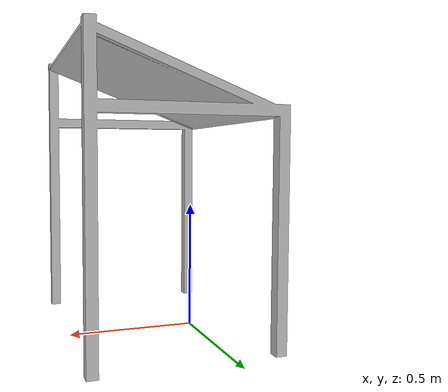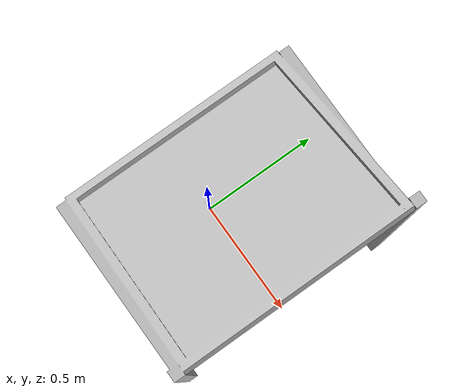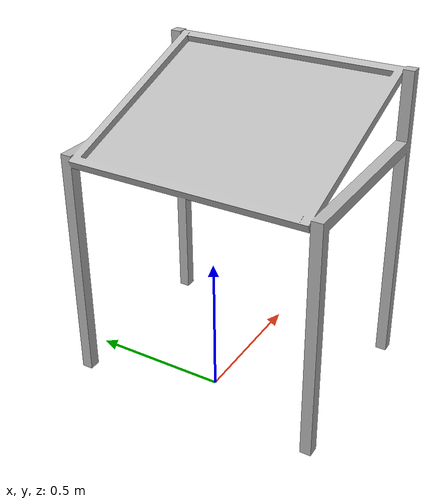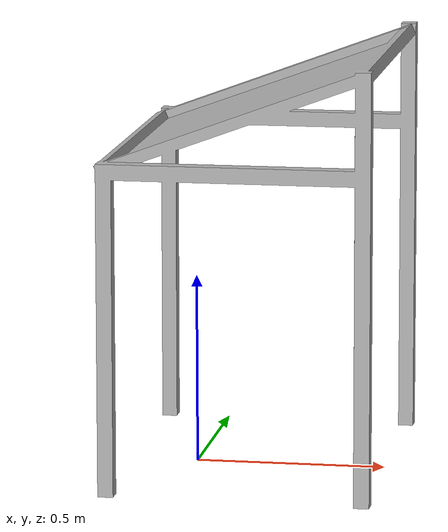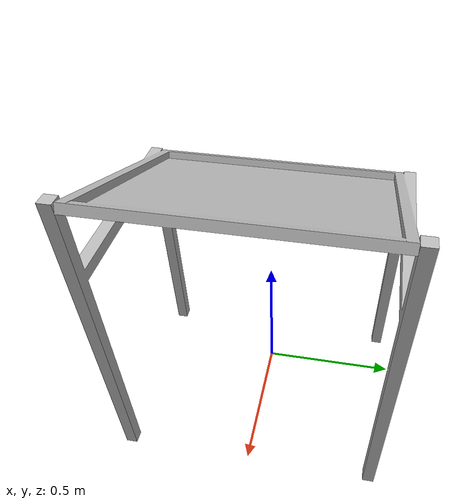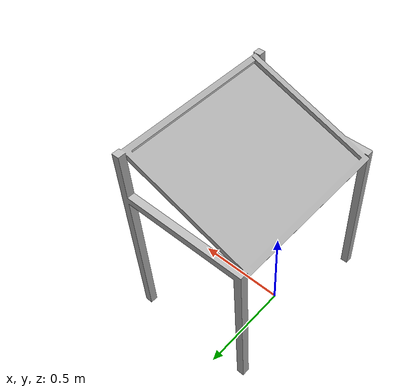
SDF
<?xml version="1.0"?>
<sdf version="1.4">

  <model name="RAAL_op70">

    <static>true</static>

    <link name="link">

      <pose>0 0 0 0 0 0</pose>

      <collision name="station_collision">
        <geometry>
          <mesh>
            <uri>model://RAAL_op70/meshes/RAAL_op70.dae</uri>
          </mesh>
        </geometry>
      </collision>

      <visual name="station_visual">
        <geometry>
          <mesh>
            <uri>model://RAAL_op70/meshes/RAAL_op70.dae</uri>
          </mesh>
        </geometry>

        <material>
          <script>
            <uri>model://RAAL_op70/materials/scripts</uri>
            <uri>model://RAAL_op70/materials/textures</uri>
          </script>
        </material>
      </visual>

    </link>

  </model>
</sdf>
